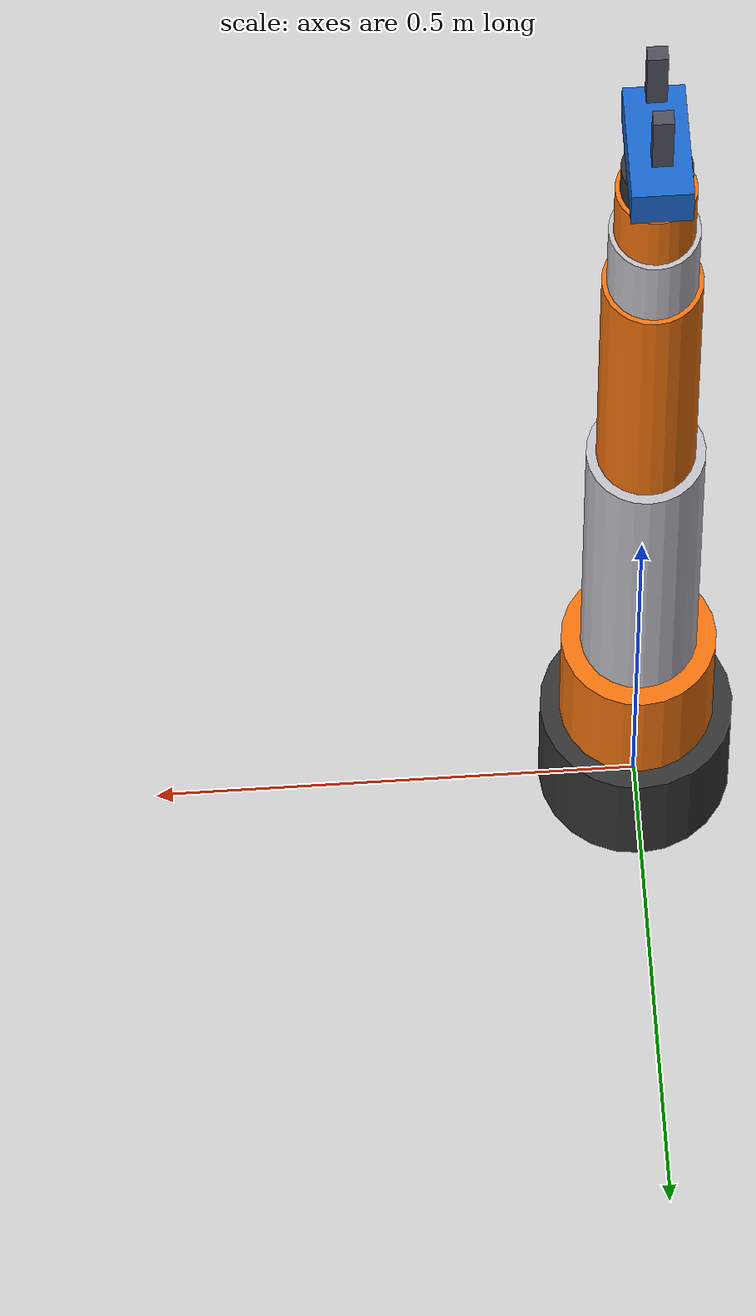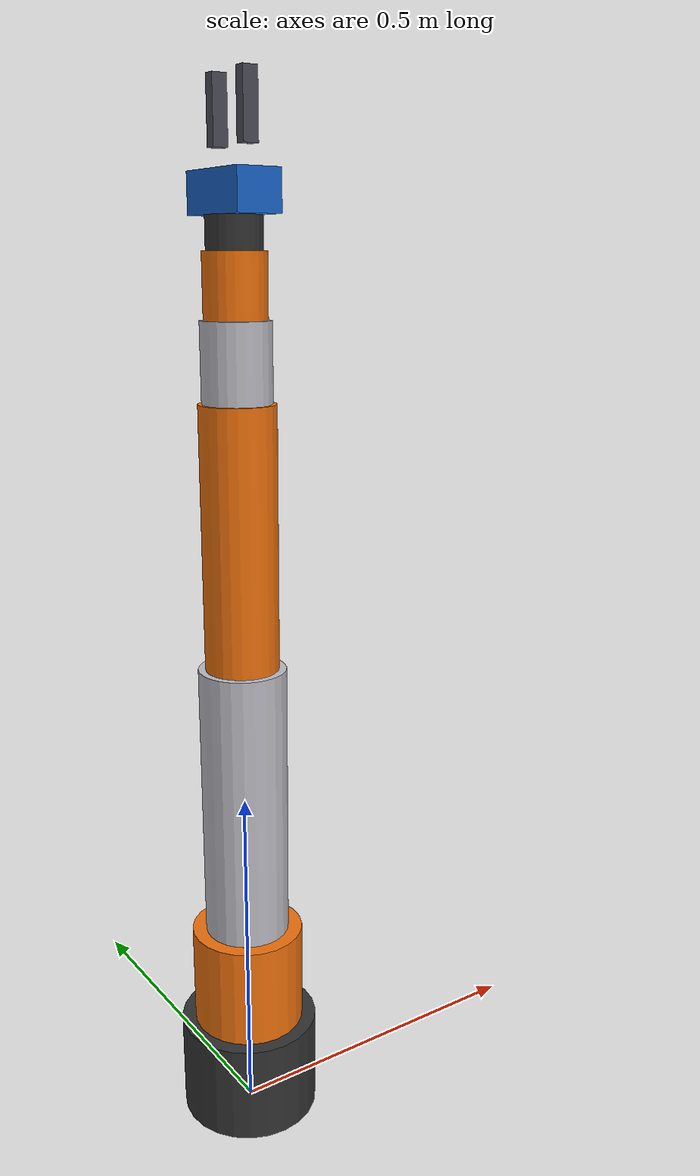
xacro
<?xml version="1.0"?>
<robot xmlns:xacro="http://www.ros.org/wiki/xacro" name="my_6dof">

  <xacro:arg name="prefix" default=""/>
  <xacro:arg name="use_mock" default="false"/>

  <xacro:include filename="$(find my_6dof_description)/urdf/my_6dof_macro.xacro"/>
  <xacro:include filename="$(find my_6dof_description)/urdf/my_6dof.ros2_control.xacro"/>

  <!-- Instantiate Robot -->
  <xacro:my_6dof_robot prefix="$(arg prefix)"/>

  <!-- Instantiate ros2_control -->
  <xacro:my_6dof_ros2_control name="my_6dof_system" prefix="$(arg prefix)" use_mock="$(arg use_mock)"/>

  <!-- Gazebo ROS 2 Control Plugin -->
  <gazebo>
    <plugin filename="gz_ros2_control-system" name="gz_ros2_control::GazeboSimROS2ControlPlugin">
      <parameters>$(find my_6dof_controllers)/config/ros2_controllers.yaml</parameters>
    </plugin>
  </gazebo>

</robot>

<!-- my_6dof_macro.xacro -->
<robot xmlns:xacro="http://www.ros.org/wiki/xacro">

  <xacro:include filename="$(find my_6dof_description)/urdf/inc/inertia_macros.xacro"/>

  <!-- Materials -->
  <material name="dark_grey">
    <color rgba="0.2 0.2 0.2 1.0"/>
  </material>
  <material name="bright_orange">
    <color rgba="0.95 0.45 0.05 1.0"/>
  </material>
  <material name="metallic_silver">
    <color rgba="0.75 0.75 0.78 1.0"/>
  </material>
  <material name="accent_blue">
    <color rgba="0.1 0.4 0.8 1.0"/>
  </material>
  <material name="finger_grey">
    <color rgba="0.3 0.3 0.35 1.0"/>
  </material>

  <xacro:macro name="my_6dof_robot" params="prefix">

    <!-- World Link and Joint -->
    <link name="world"/>

    <joint name="${prefix}world_to_base" type="fixed">
      <parent link="world"/>
      <child link="${prefix}base_link"/>
      <origin xyz="0 0 0" rpy="0 0 0"/>
    </joint>

    <!-- Base Link -->
    <link name="${prefix}base_link">
      <visual>
        <origin xyz="0 0 0.075" rpy="0 0 0"/>
        <geometry>
          <cylinder radius="0.1" length="0.15"/>
        </geometry>
        <material name="dark_grey"/>
      </visual>
      <collision>
        <origin xyz="0 0 0.075" rpy="0 0 0"/>
        <geometry>
          <cylinder radius="0.1" length="0.15"/>
        </geometry>
      </collision>
      <xacro:cylinder_inertia m="5.0" r="0.1" h="0.15"/>
    </link>

    <!-- Joint 1: base_link -> shoulder_link -->
    <joint name="${prefix}joint1" type="revolute">
      <parent link="${prefix}base_link"/>
      <child link="${prefix}shoulder_link"/>
      <origin xyz="0 0 0.15" rpy="0 0 0"/>
      <axis xyz="0 0 1"/>
      <limit lower="-3.14159" upper="3.14159" effort="150.0" velocity="3.14159"/>
      <dynamics damping="0.5" friction="0.1"/>
    </joint>

    <!-- Shoulder Link -->
    <link name="${prefix}shoulder_link">
      <visual>
        <origin xyz="0 0 0.075" rpy="0 0 0"/>
        <geometry>
          <cylinder radius="0.08" length="0.15"/>
        </geometry>
        <material name="bright_orange"/>
      </visual>
      <collision>
        <origin xyz="0 0 0.075" rpy="0 0 0"/>
        <geometry>
          <cylinder radius="0.08" length="0.15"/>
        </geometry>
      </collision>
      <xacro:cylinder_inertia m="4.0" r="0.08" h="0.15"/>
    </link>

    <!-- Joint 2: shoulder_link -> upper_arm_link -->
    <joint name="${prefix}joint2" type="revolute">
      <parent link="${prefix}shoulder_link"/>
      <child link="${prefix}upper_arm_link"/>
      <origin xyz="0 0 0.15" rpy="0 0 0"/>
      <axis xyz="0 1 0"/>
      <limit lower="-3.14159" upper="3.14159" effort="150.0" velocity="3.14159"/>
      <dynamics damping="0.5" friction="0.1"/>
    </joint>

    <!-- Upper Arm Link -->
    <link name="${prefix}upper_arm_link">
      <visual>
        <origin xyz="0 0 0.2" rpy="0 0 0"/>
        <geometry>
          <cylinder radius="0.06" length="0.4"/>
        </geometry>
        <material name="metallic_silver"/>
      </visual>
      <collision>
        <origin xyz="0 0 0.2" rpy="0 0 0"/>
        <geometry>
          <cylinder radius="0.06" length="0.4"/>
        </geometry>
      </collision>
      <xacro:cylinder_inertia m="4.5" r="0.06" h="0.4"/>
    </link>

    <!-- Joint 3: upper_arm_link -> forearm_link -->
    <joint name="${prefix}joint3" type="revolute">
      <parent link="${prefix}upper_arm_link"/>
      <child link="${prefix}forearm_link"/>
      <origin xyz="0 0 0.4" rpy="0 0 0"/>
      <axis xyz="0 1 0"/>
      <limit lower="-3.14159" upper="3.14159" effort="150.0" velocity="3.14159"/>
      <dynamics damping="0.5" friction="0.1"/>
    </joint>

    <!-- Forearm Link -->
    <link name="${prefix}forearm_link">
      <visual>
        <origin xyz="0 0 0.175" rpy="0 0 0"/>
        <geometry>
          <cylinder radius="0.05" length="0.35"/>
        </geometry>
        <material name="bright_orange"/>
      </visual>
      <collision>
        <origin xyz="0 0 0.175" rpy="0 0 0"/>
        <geometry>
          <cylinder radius="0.05" length="0.35"/>
        </geometry>
      </collision>
      <xacro:cylinder_inertia m="2.5" r="0.05" h="0.35"/>
    </link>

    <!-- Joint 4: forearm_link -> wrist_1_link -->
    <joint name="${prefix}joint4" type="revolute">
      <parent link="${prefix}forearm_link"/>
      <child link="${prefix}wrist_1_link"/>
      <origin xyz="0 0 0.35" rpy="0 0 0"/>
      <axis xyz="0 1 0"/>
      <limit lower="-3.14159" upper="3.14159" effort="50.0" velocity="3.14159"/>
      <dynamics damping="0.2" friction="0.05"/>
    </joint>

    <!-- Wrist 1 Link -->
    <link name="${prefix}wrist_1_link">
      <visual>
        <origin xyz="0 0 0.05" rpy="0 0 0"/>
        <geometry>
          <cylinder radius="0.045" length="0.1"/>
        </geometry>
        <material name="metallic_silver"/>
      </visual>
      <collision>
        <origin xyz="0 0 0.05" rpy="0 0 0"/>
        <geometry>
          <cylinder radius="0.045" length="0.1"/>
        </geometry>
      </collision>
      <xacro:cylinder_inertia m="1.2" r="0.045" h="0.1"/>
    </link>

    <!-- Joint 5: wrist_1_link -> wrist_2_link -->
    <joint name="${prefix}joint5" type="revolute">
      <parent link="${prefix}wrist_1_link"/>
      <child link="${prefix}wrist_2_link"/>
      <origin xyz="0 0 0.1" rpy="0 0 0"/>
      <axis xyz="1 0 0"/>
      <limit lower="-3.14159" upper="3.14159" effort="50.0" velocity="3.14159"/>
      <dynamics damping="0.2" friction="0.05"/>
    </joint>

    <!-- Wrist 2 Link -->
    <link name="${prefix}wrist_2_link">
      <visual>
        <origin xyz="0 0 0.04" rpy="0 0 0"/>
        <geometry>
          <cylinder radius="0.04" length="0.08"/>
        </geometry>
        <material name="bright_orange"/>
      </visual>
      <collision>
        <origin xyz="0 0 0.04" rpy="0 0 0"/>
        <geometry>
          <cylinder radius="0.04" length="0.08"/>
        </geometry>
      </collision>
      <xacro:cylinder_inertia m="1.0" r="0.04" h="0.08"/>
    </link>

    <!-- Joint 6: wrist_2_link -> wrist_3_link -->
    <joint name="${prefix}joint6" type="revolute">
      <parent link="${prefix}wrist_2_link"/>
      <child link="${prefix}wrist_3_link"/>
      <origin xyz="0 0 0.08" rpy="0 0 0"/>
      <axis xyz="0 0 1"/>
      <limit lower="-6.28318" upper="6.28318" effort="30.0" velocity="6.28318"/>
      <dynamics damping="0.1" friction="0.02"/>
    </joint>

    <!-- Wrist 3 Link -->
    <link name="${prefix}wrist_3_link">
      <visual>
        <origin xyz="0 0 0.02" rpy="0 0 0"/>
        <geometry>
          <cylinder radius="0.035" length="0.04"/>
        </geometry>
        <material name="dark_grey"/>
      </visual>
      <collision>
        <origin xyz="0 0 0.02" rpy="0 0 0"/>
        <geometry>
          <cylinder radius="0.035" length="0.04"/>
        </geometry>
      </collision>
      <xacro:cylinder_inertia m="0.5" r="0.035" h="0.04"/>
    </link>

    <!-- Tool0 Link (flange frame) -->
    <joint name="${prefix}flange_joint" type="fixed">
      <parent link="${prefix}wrist_3_link"/>
      <child link="${prefix}tool0"/>
      <origin xyz="0 0 0.04" rpy="0 0 0"/>
    </joint>

    <link name="${prefix}tool0"/>

    <!-- Gripper Base Joint -->
    <joint name="${prefix}gripper_base_joint" type="fixed">
      <parent link="${prefix}tool0"/>
      <child link="${prefix}gripper"/>
      <origin xyz="0 0 0.025" rpy="0 0 0"/>
    </joint>

    <!-- Gripper Base Link -->
    <link name="${prefix}gripper">
      <visual>
        <origin xyz="0 0 0" rpy="0 0 0"/>
        <geometry>
          <box size="0.06 0.12 0.05"/>
        </geometry>
        <material name="accent_blue"/>
      </visual>
      <collision>
        <origin xyz="0 0 0" rpy="0 0 0"/>
        <geometry>
          <box size="0.06 0.12 0.05"/>
        </geometry>
      </collision>
      <xacro:box_inertia m="0.6" x="0.06" y="0.12" z="0.05"/>
    </link>

    <!-- Left Finger Joint (Prismatic) -->
    <joint name="${prefix}gripper_joint" type="prismatic">
      <parent link="${prefix}gripper"/>
      <child link="${prefix}left_finger"/>
      <origin xyz="0 0.035 0.05" rpy="0 0 0"/>
      <axis xyz="0 1 0"/>
      <limit lower="0.0" upper="0.04" effort="20.0" velocity="0.1"/>
      <dynamics damping="0.1" friction="0.02"/>
    </joint>

    <!-- Left Finger Link -->
    <link name="${prefix}left_finger">
      <visual>
        <origin xyz="0 0 0.04" rpy="0 0 0"/>
        <geometry>
          <box size="0.02 0.015 0.08"/>
        </geometry>
        <material name="finger_grey"/>
      </visual>
      <collision>
        <origin xyz="0 0 0.04" rpy="0 0 0"/>
        <geometry>
          <box size="0.02 0.015 0.08"/>
        </geometry>
      </collision>
      <xacro:box_inertia m="0.1" x="0.02" y="0.015" z="0.08"/>
    </link>

    <!-- Right Finger Joint (Prismatic, Mimic of left finger) -->
    <joint name="${prefix}right_finger_joint" type="prismatic">
      <parent link="${prefix}gripper"/>
      <child link="${prefix}right_finger"/>
      <origin xyz="0 -0.035 0.05" rpy="0 0 0"/>
      <axis xyz="0 1 0"/>
      <limit lower="-0.04" upper="0.0" effort="20.0" velocity="0.1"/>
      <mimic joint="${prefix}gripper_joint" multiplier="-1.0" offset="0.0"/>
      <dynamics damping="0.1" friction="0.02"/>
    </joint>

    <!-- Right Finger Link -->
    <link name="${prefix}right_finger">
      <visual>
        <origin xyz="0 0 0.04" rpy="0 0 0"/>
        <geometry>
          <box size="0.02 0.015 0.08"/>
        </geometry>
        <material name="finger_grey"/>
      </visual>
      <collision>
        <origin xyz="0 0 0.04" rpy="0 0 0"/>
        <geometry>
          <box size="0.02 0.015 0.08"/>
        </geometry>
      </collision>
      <xacro:box_inertia m="0.1" x="0.02" y="0.015" z="0.08"/>
    </link>

  </xacro:macro>

</robot>

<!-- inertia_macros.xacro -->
<robot xmlns:xacro="http://www.ros.org/wiki/xacro">

  <!-- Cylinder Inertia Macro -->
  <xacro:macro name="cylinder_inertia" params="m r h">
    <inertial>
      <mass value="${m}"/>
      <inertia ixx="${(1.0/12.0) * m * (3*r*r + h*h)}" ixy="0.0" ixz="0.0"
               iyy="${(1.0/12.0) * m * (3*r*r + h*h)}" iyz="0.0"
               izz="${0.5 * m * r * r}"/>
    </inertial>
  </xacro:macro>

  <!-- Box Inertia Macro -->
  <xacro:macro name="box_inertia" params="m x y z">
    <inertial>
      <mass value="${m}"/>
      <inertia ixx="${(1.0/12.0) * m * (y*y + z*z)}" ixy="0.0" ixz="0.0"
               iyy="${(1.0/12.0) * m * (x*x + z*z)}" iyz="0.0"
               izz="${(1.0/12.0) * m * (x*x + y*y)}"/>
    </inertial>
  </xacro:macro>

  <!-- Sphere Inertia Macro -->
  <xacro:macro name="sphere_inertia" params="m r">
    <inertial>
      <mass value="${m}"/>
      <inertia ixx="${(2.0/5.0) * m * r * r}" ixy="0.0" ixz="0.0"
               iyy="${(2.0/5.0) * m * r * r}" iyz="0.0"
               izz="${(2.0/5.0) * m * r * r}"/>
    </inertial>
  </xacro:macro>

</robot>
